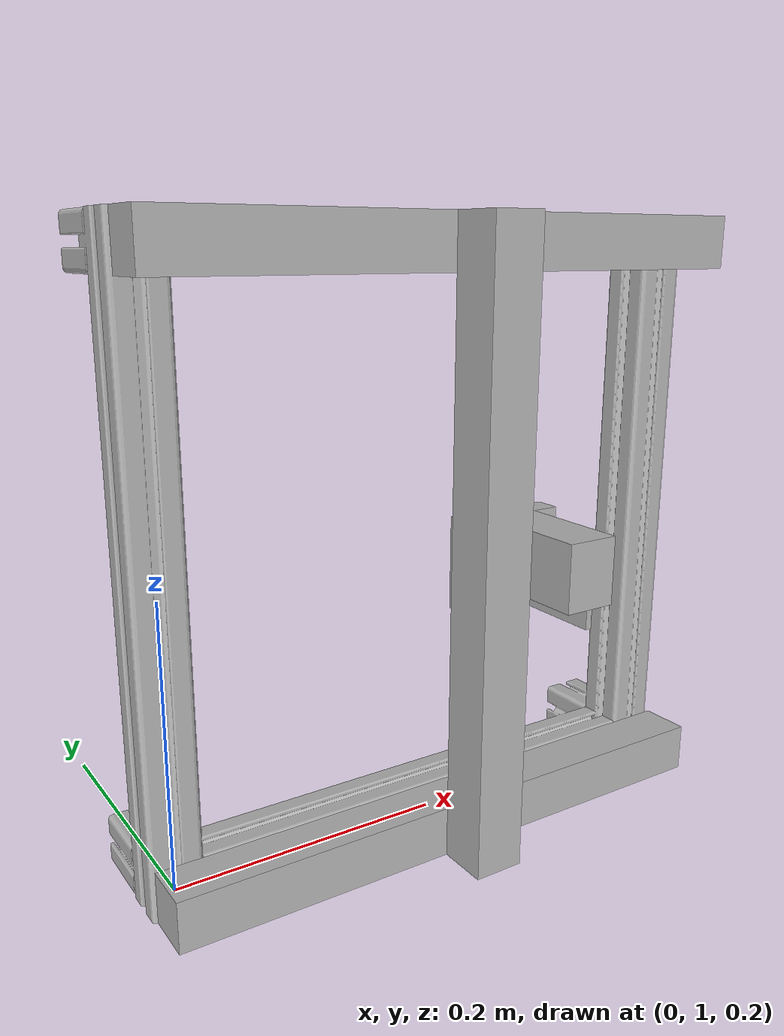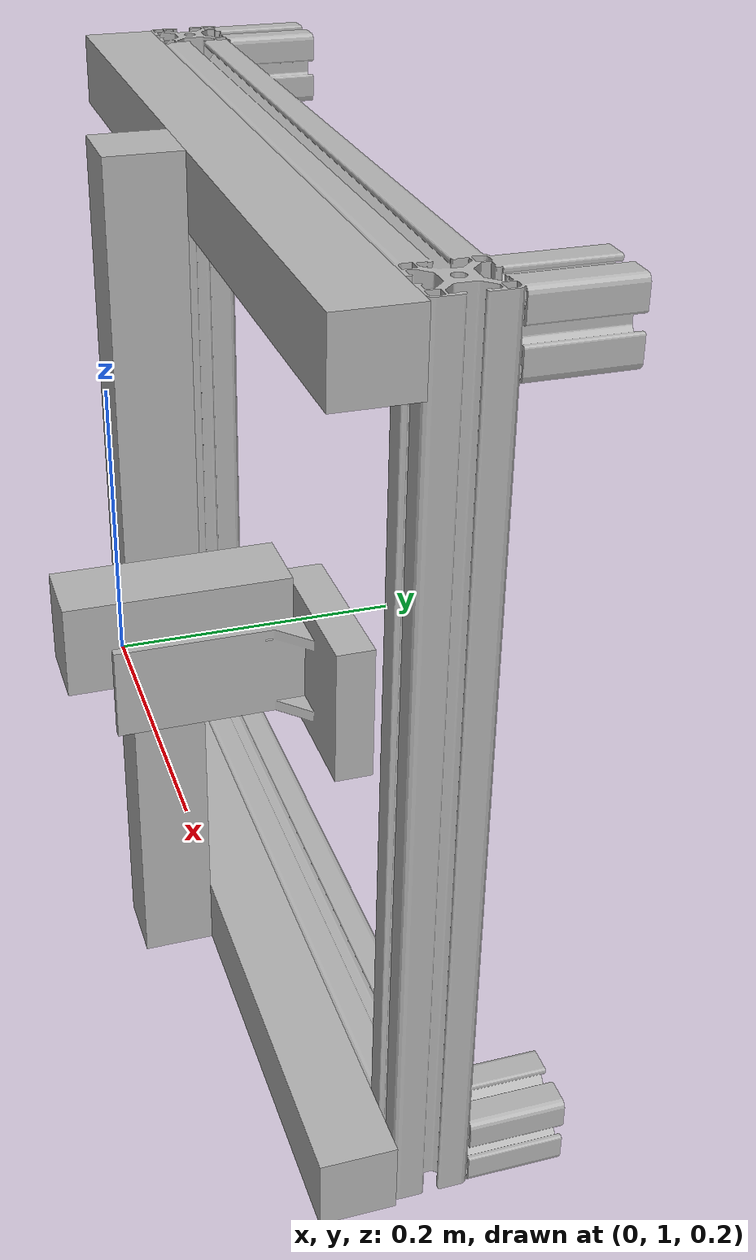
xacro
<?xml version="1.0" ?>
<robot name="Robot_Gantry_Gazebo" xmlns:xacro="http://www.ros.org/wiki/xacro">

<xacro:include filename="$(find robot_gantry_description)/urdf/materials.xacro" />
<xacro:include filename="$(find robot_gantry_description)/urdf/Robot_Gantry_Gazebo.trans" />
<xacro:include filename="$(find robot_gantry_description)/urdf/Robot_Gantry_Gazebo.gazebo" />
<link name="world" />
<link name="base_link">
  <inertial>
    <origin xyz="0.22891719764184684 0.00041376831351214394 0.23185797143719683" rpy="0 0 0"/>
    <mass value="12.057599999999999"/>
    <inertia ixx="0.233114" iyy="0.816701" izz="0.586803" ixy="0.0" iyz="0.0" ixz="0.0"/>
  </inertial>
  <visual>
    <origin xyz="0 0 0" rpy="0 0 0"/>
    <geometry>
      <mesh filename="file:///home/george/meshes/base_link.stl" scale="0.001 0.001 0.001"/>
    </geometry>
    <material name="silver"/>
  </visual>
  <collision>
    <origin xyz="0 0 0" rpy="0 0 0"/>
    <geometry>
      <mesh filename="file:///home/george/meshes/base_link.stl" scale="0.001 0.001 0.001"/>
    </geometry>
  </collision>
</link>

<link name="z_axis_1">
  <inertial>
    <origin xyz="1.9764184683301877e-07 -2.3168648784210877e-07 0.019999971437196784" rpy="0 0 0"/>
    <mass value="1.8840000000000001"/>
    <inertia ixx="0.002512" iyy="0.000644" izz="0.002653" ixy="-0.0" iyz="-0.0" ixz="-0.0"/>
  </inertial>
  <visual>
    <origin xyz="-0.228917 -0.040414 -0.251858" rpy="0 0 0"/>
    <geometry>
      <mesh filename="file:///home/george/meshes/z_axis_1.stl" scale="0.001 0.001 0.001"/>
    </geometry>
    <material name="silver"/>
  </visual>
  <collision>
    <origin xyz="-0.228917 -0.040414 -0.251858" rpy="0 0 0"/>
    <geometry>
      <mesh filename="file:///home/george/meshes/z_axis_1.stl" scale="0.001 0.001 0.001"/>
    </geometry>
  </collision>
</link>

<link name="y_axis_1">
  <inertial>
    <origin xyz="0.24000019764184685 0.019999768313512148 -2.8562803150444793e-08" rpy="0 0 0"/>
    <mass value="6.0287999999999995"/>
    <inertia ixx="0.001608" iyy="0.116557" izz="0.116557" ixy="-0.0" iyz="0.0" ixz="0.0"/>
  </inertial>
  <visual>
    <origin xyz="0.011083 -0.020414 -0.231858" rpy="0 0 0"/>
    <geometry>
      <mesh filename="file:///home/george/meshes/y_axis_1.stl" scale="0.001 0.001 0.001"/>
    </geometry>
    <material name="silver"/>
  </visual>
  <collision>
    <origin xyz="0.011083 -0.020414 -0.231858" rpy="0 0 0"/>
    <geometry>
      <mesh filename="file:///home/george/meshes/y_axis_1.stl" scale="0.001 0.001 0.001"/>
    </geometry>
  </collision>
</link>

<link name="End_effector_1">
  <inertial>
    <origin xyz="-0.19891823531161548 0.01352440186466668 -0.20086693056215876" rpy="0 0 0"/>
    <mass value="1.3353102876458012"/>
    <inertia ixx="0.001636" iyy="0.001388" izz="0.001431" ixy="0.0" iyz="0.000103" ixz="-0.0"/>
  </inertial>
  <visual>
    <origin xyz="-0.427834 0.039172 -0.503716" rpy="0 0 0"/>
    <geometry>
      <mesh filename="file:///home/george/meshes/End_effector_1.stl" scale="0.001 0.001 0.001"/>
    </geometry>
    <material name="silver"/>
  </visual>
  <collision>
    <origin xyz="-0.427834 0.039172 -0.503716" rpy="0 0 0"/>
    <geometry>
      <mesh filename="file:///home/george/meshes/End_effector_1.stl" scale="0.001 0.001 0.001"/>
    </geometry>
  </collision>
</link>

<link name="stand_1">
  <inertial>
    <origin xyz="0.24000019764184735 -0.02471955391898048 0.23667997143721392" rpy="0 0 0"/>
    <mass value="9.201122274860012"/>
    <inertia ixx="0.31766" iyy="0.629215" izz="0.317662" ixy="-0.0" iyz="0.0" ixz="-0.0"/>
  </inertial>
  <visual>
    <origin xyz="0.011083 0.019586 0.008142" rpy="0 0 0"/>
    <geometry>
      <mesh filename="file:///home/george/meshes/stand_1.stl" scale="0.001 0.001 0.001"/>
    </geometry>
    <material name="silver"/>
  </visual>
  <collision>
    <origin xyz="0.011083 0.019586 0.008142" rpy="0 0 0"/>
    <geometry>
      <mesh filename="file:///home/george/meshes/stand_1.stl" scale="0.001 0.001 0.001"/>
    </geometry>
  </collision>
</link>

<!-- Add a joint to align the base_link with the world frame -->
<joint name="world_base_joint" type="fixed">
  <parent link="world"/>
  <child link="base_link"/>
  <origin xyz="0 1 0.15" rpy="1.57 0 0"/>
</joint>

<joint name="Slider 3" type="prismatic">
  <origin xyz="0.24 0.02 0.02" rpy="0 0 0"/>
  <parent link="y_axis_1"/>
  <child link="z_axis_1"/>
  <axis xyz="1.0 0.0 -0.0"/>
  <limit upper="0.175" lower="-0.175" effort="100" velocity="100"/>
</joint>

<joint name="Slider 4" type="prismatic">
  <origin xyz="-0.011083 0.020414 0.231858" rpy="0 0 0"/>
  <parent link="base_link"/>
  <child link="y_axis_1"/>
  <axis xyz="0.0 0.0 1.0"/>
  <limit upper="0.18" lower="-0.18" effort="100" velocity="100"/>
</joint>

<joint name="Slider 7" type="prismatic">
  <origin xyz="0.198917 -0.079586 0.251858" rpy="0 0 0"/>
  <parent link="z_axis_1"/>
  <child link="End_effector_1"/>
  <axis xyz="-0.0 1.0 0.0"/>
  <limit upper="-0.003" lower="-0.05" effort="100" velocity="100"/>
</joint>

<joint name="Rigid 9" type="fixed">
  <origin xyz="-0.011083 -0.019586 -0.008142" rpy="0 0 0"/>
  <parent link="base_link"/>
  <child link="stand_1"/>
</joint>

</robot>

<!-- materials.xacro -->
<robot name="Robot_Gantry_Gazebo" xmlns:xacro="http://www.ros.org/wiki/xacro" >

<material name="silver">
  <color rgba="0.700 0.700 0.700 1.000"/>
</material>

</robot>

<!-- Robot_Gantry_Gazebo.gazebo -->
<robot name="Robot_Gantry_Gazebo" xmlns:xacro="http://www.ros.org/wiki/xacro" >

<xacro:property name="body_color" value="Gazebo/Silver" />

<gazebo>
  <plugin name="control" filename="libgazebo_ros_control.so"/>
</gazebo>
<gazebo reference="base_link">
  <material>${body_color}</material>
  <mu1>0.2</mu1>
  <mu2>0.2</mu2>
  <selfCollide>true</selfCollide>
  <gravity>true</gravity>
</gazebo>

<gazebo reference="z_axis_1">
  <material>${body_color}</material>
  <mu1>0.2</mu1>
  <mu2>0.2</mu2>
  <selfCollide>true</selfCollide>
</gazebo>

<gazebo reference="y_axis_1">
  <material>${body_color}</material>
  <mu1>0.2</mu1>
  <mu2>0.2</mu2>
  <selfCollide>true</selfCollide>
</gazebo>

<gazebo reference="End_effector_1">
  <material>${body_color}</material>
  <mu1>0.2</mu1>
  <mu2>0.2</mu2>
  <selfCollide>true</selfCollide>
</gazebo>

<gazebo reference="stand_1">
  <material>${body_color}</material>
  <mu1>0.2</mu1>
  <mu2>0.2</mu2>
  <selfCollide>true</selfCollide>
</gazebo>

</robot>
